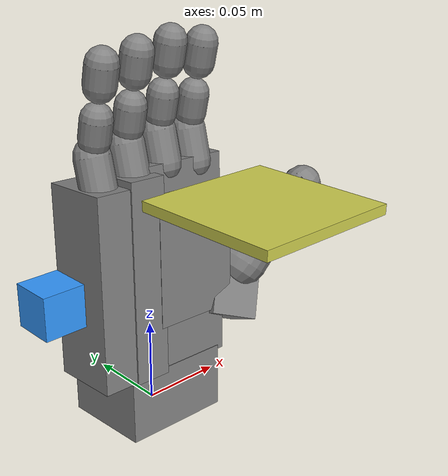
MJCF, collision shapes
<mujoco model="v2_scene_grasp_qbr">
  <size nconmax="80" />
  <include file="right_hand_v2_vertical_coacd_qbr.xml" />
  <include file="small_cube.xml" />
  <statistic center="-0.130 0 0.005" extent="0.5" meansize="0.01" />
  <visual>
    <headlight diffuse=".8 .8 .8" ambient=".2 .2 .2" specular="1 1 1" />
    <rgba force="1 0 0 1" />
    <global azimuth="120" elevation="-20" />
  </visual>
  <asset>
    <texture type="skybox" builtin="gradient" rgb1="1 1 1" rgb2="1 1 1" width="800" height="800" />
    <texture type="2d" name="groundplane" builtin="checker" mark="edge" rgb1="1 1 1" rgb2="1 1 1" markrgb="0 0 0" width="300" height="300" />
    <material name="groundplane" texture="groundplane" texuniform="true" texrepeat="5 5" reflectance="0" />
  </asset>
  <worldbody>
    <camera name="side" pos="-0.314 -0.181 0.249" xyaxes="0.5 -0.866 0 0.366 0.211 0.906" />
    <camera name="palm" pos="-0.376 0.0 0.217" xyaxes="0 -1 0 0.342 0 0.940" />
    <geom name="floor" pos="0 0 -0.25" size="0 0 0.01" type="plane" material="groundplane" contype="2" conaffinity="2" />
    <body name="cube_support" mocap="true" pos="0.025 -0.065 0.1348">
      <geom name="cube_support_geom" type="box" size="0.045 0.045 0.003" rgba="0.8 0.8 0.3 0.3" contype="4" conaffinity="0" />
    </body>
  </worldbody>
  <sensor>
    <framepos name="cube_position" objtype="body" objname="cube" />
    <framequat name="cube_orientation" objtype="body" objname="cube" />
    <framelinvel name="cube_linvel" objtype="body" objname="cube" />
    <frameangvel name="cube_angvel" objtype="body" objname="cube" />
    <framepos name="palm_position" objtype="site" objname="grasp_site" />
    <framepos name="th_tip_position" objtype="site" objname="th_tip" reftype="site" refname="grasp_site" />
    <framepos name="if_tip_position" objtype="site" objname="if_tip" reftype="site" refname="grasp_site" />
    <framepos name="mf_tip_position" objtype="site" objname="mf_tip" reftype="site" refname="grasp_site" />
    <framepos name="rf_tip_position" objtype="site" objname="rf_tip" reftype="site" refname="grasp_site" />
    <framepos name="pf_tip_position" objtype="site" objname="pf_tip" reftype="site" refname="grasp_site" />
  </sensor>
  <keyframe>
    <key name="home" qpos="0.55 0.50875 0.55 0.50875 1.3963 1.2916 1.3963 1.2916 1.38 0.22 0.33     0.025 -0.065 0.1503 1 0 0 0" ctrl="     1.38     0.33     0.55     0.55     1.4     1.4" mpos="0.025 -0.065 0.1348" mquat="1 0 0 0" />
  </keyframe>
</mujoco>

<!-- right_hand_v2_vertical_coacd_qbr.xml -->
<mujoco model="Lingxi_Hand_V2_Right_QBR">
  <compiler angle="radian" meshdir="/home/ll/SRTP/Aero-Hand/handinformation/URDF/右/qbr/meshes/" />
  <option timestep="0.01" integrator="Euler" iterations="20" ls_iterations="20">
    <flag eulerdamp="disable" />
  </option>
  <custom>
    <numeric data="80" name="max_contact_points" />
    <numeric data="50" name="max_geom_pairs" />
  </custom>
  <asset>
    <material name="black" rgba="0.2 0.2 0.2 1" />
    <material name="gray" rgba="0.5 0.5 0.5 1" />
    <material name="white" rgba="0.529 0.549 0.549 1" />
    <material name="rubber" rgba="0.3 0.3 0.3 1" />
    <mesh name="v2_palm" file="v2_base_link.STL" />
    <mesh name="v2_thumb_base" file="link1.STL" />
    <mesh name="v2_thumb_mid" file="link2.STL" />
    <mesh name="v2_thumb_tip" file="link3.STL" />
    <mesh name="v2_index_proximal" file="link4.STL" />
    <mesh name="v2_index_distal" file="link5.STL" />
    <mesh name="v2_middle_proximal" file="link6.STL" />
    <mesh name="v2_middle_distal" file="link7.STL" />
    <mesh name="v2_ring_proximal" file="link8.STL" />
    <mesh name="v2_ring_distal" file="link9.STL" />
    <mesh name="v2_pinky_proximal" file="link10.STL" />
    <mesh name="v2_pinky_distal" file="link11.STL" />
  </asset>
  <default>
    <default class="v2_hand">
      <site group="4" />
      <default class="visual">
        <geom group="2" type="mesh" contype="0" conaffinity="0" density="0" material="white" />
      </default>
      <joint damping="0.02" armature="0.001559127" frictionloss="0.02" />
      <position kp="3.0" />
      <default class="mcp">
        <joint range="0 1.3963" damping="0.1" />
        <position ctrlrange="0 1.40" />
      </default>
      <default class="pip">
        <joint range="0 1.2915" damping="0.05" />
      </default>
      <default class="thumb_cmc">
        <joint range="0 1.3788" damping="0.1" />
        <position ctrlrange="0 1.38" />
      </default>
      <!-- Current hardware-style thumb flex proxy: passive 30deg segment
           follows the actively controlled thumb MCP flexion chain. -->
      <default class="thumb_flex">
        <joint range="0 0.5236" damping="0.05" />
      </default>
      <default class="thumb_mcp">
        <joint range="0 0.7854" damping="0.05" />
        <position ctrlrange="0 0.79" />
      </default>
    </default>
  </default>
  <contact>
    <exclude body1="palm" body2="right_index_proximal" />
    <exclude body1="palm" body2="right_middle_proximal" />
    <exclude body1="palm" body2="right_ring_proximal" />
    <exclude body1="palm" body2="right_pinky_proximal" />
    <exclude body1="palm" body2="right_thumb_base" />
    <exclude body1="palm" body2="right_thumb_mid" />
    <exclude body1="palm" body2="right_ring_distal" />
    <exclude body1="palm" body2="right_pinky_distal" />
    <exclude body1="v2_mount" body2="right_index_proximal" />
    <exclude body1="v2_mount" body2="right_middle_proximal" />
    <exclude body1="v2_mount" body2="right_ring_proximal" />
    <exclude body1="v2_mount" body2="right_pinky_proximal" />
    <exclude body1="v2_mount" body2="right_thumb_base" />
    <exclude body1="right_index_proximal" body2="right_index_distal" />
    <exclude body1="right_middle_proximal" body2="right_middle_distal" />
    <exclude body1="right_ring_proximal" body2="right_ring_distal" />
    <exclude body1="right_pinky_proximal" body2="right_pinky_distal" />
    <exclude body1="right_thumb_base" body2="right_thumb_mid" />
    <exclude body1="right_thumb_mid" body2="right_thumb_tip" />
    <exclude body1="right_index_proximal" body2="right_middle_proximal" />
    <exclude body1="right_index_distal" body2="right_middle_distal" />
    <exclude body1="right_middle_proximal" body2="right_ring_proximal" />
    <exclude body1="right_middle_distal" body2="right_ring_distal" />
    <exclude body1="right_ring_proximal" body2="right_pinky_proximal" />
    <exclude body1="right_ring_distal" body2="right_pinky_distal" />
    <exclude body1="right_index_proximal" body2="right_middle_distal" />
    <exclude body1="right_middle_proximal" body2="right_ring_distal" />
    <exclude body1="right_ring_proximal" body2="right_pinky_distal" />
    <exclude body1="right_middle_proximal" body2="right_index_distal" />
    <exclude body1="right_ring_proximal" body2="right_middle_distal" />
    <exclude body1="right_pinky_proximal" body2="right_ring_distal" />
  </contact>
  <worldbody>
    <body name="v2_mount" pos="0 0 0" euler="1.5708 0 0" childclass="v2_hand">
      <body name="palm" pos="0 0 0">
        <geom type="mesh" mesh="v2_palm" class="visual" />
        <geom name="palm_capsule_000" type="box" size="0.019545 0.032818 0.027657" pos="-0.001294 0.013306 -0.002059" quat="-0.021394 -0.694705 0.718833 -0.014360" group="3" friction="1.5" solref="0.005 1.0" solimp="0.97 0.999 0.0001" />
        <geom name="palm_capsule_001" type="box" size="0.055995 0.012246 0.020313" pos="-0.037477 0.088524 0.002150" quat="-0.021394 -0.694705 0.718833 -0.014360" group="3" friction="1.5" solref="0.005 1.0" solimp="0.97 0.999 0.0001" />
        <geom name="palm_capsule_002" type="box" size="0.015020 0.023038 0.009075" pos="0.014322 0.045467 0.014280" quat="-0.021394 -0.694705 0.718833 -0.014360" group="3" friction="1.5" solref="0.005 1.0" solimp="0.97 0.999 0.0001" />
        <geom name="palm_capsule_003" type="box" size="0.058447 0.011058 0.023732" pos="-0.017454 0.089066 -0.000677" quat="-0.021394 -0.694705 0.718833 -0.014360" group="3" friction="1.5" solref="0.005 1.0" solimp="0.97 0.999 0.0001" />
        <geom name="palm_capsule_004" type="box" size="0.015590 0.024517 0.016455" pos="0.015471 0.045279 -0.007175" quat="-0.021394 -0.694705 0.718833 -0.014360" group="3" friction="1.5" solref="0.005 1.0" solimp="0.97 0.999 0.0001" />
        <geom name="palm_capsule_005" type="box" size="0.001643 0.008443 0.008259" pos="0.017799 0.006857 -0.019307" quat="-0.021394 -0.694705 0.718833 -0.014360" group="3" friction="1.5" solref="0.005 1.0" solimp="0.97 0.999 0.0001" />
        <geom name="palm_capsule_006" type="box" size="0.037733 0.026708 0.023460" pos="0.016879 0.095803 -0.000931" quat="-0.021394 -0.694705 0.718833 -0.014360" group="3" friction="1.5" solref="0.005 1.0" solimp="0.97 0.999 0.0001" />
        <geom name="palm_capsule_007" type="box" size="0.013627 0.026278 0.013850" pos="0.017772 0.136552 -0.001137" quat="-0.021394 -0.694705 0.718833 -0.014360" group="3" friction="1.5" solref="0.005 1.0" solimp="0.97 0.999 0.0001" />
        <site name="grasp_site" pos="0 0.085 -0.020" group="4" />
        <body name="right_index_proximal" pos="0.034276 0.1374 0.001">
          <inertial pos="-0.003657 0.0162 0.000274" mass="0.0686" diaginertia="7.49e-06 7.33e-06 2.82e-06" />
          <joint name="right_index_mcp" axis="1 0 0" class="mcp" />
          <geom type="mesh" mesh="v2_index_proximal" class="visual" />
          <geom name="right_index_proximal_capsule_000" type="capsule" group="3" friction="1.5" solref="0.005 1.0" solimp="0.97 0.999 0.0001" fromto="-0.003733 0.008071 0.003736 -0.003793 0.026509 -0.000839" size="0.010229" />
          <body name="right_index_distal" pos="0.00084336 0.031988 -0.0026473">
            <inertial pos="-0.00450 0.0246 0.00927" mass="0.0755" diaginertia="1.58e-05 1.57e-05 2.47e-06" />
            <joint name="right_index_pip" axis="1 0 0" class="pip" />
            <geom type="mesh" mesh="v2_index_distal" class="visual" />
            <geom name="right_index_distal_capsule_000" type="capsule" group="3" friction="1.5" solref="0.005 1.0" solimp="0.97 0.999 0.0001" fromto="-0.004533 0.003643 0.004505 -0.004547 0.015148 0.007211" size="0.008789" />
            <geom name="right_index_distal_capsule_001" type="capsule" group="3" friction="1.5" solref="0.005 1.0" solimp="0.97 0.999 0.0001" fromto="-0.004569 0.032374 0.011263 -0.004584 0.043669 0.013920" size="0.008894" />
            <site name="if_tip" pos="-0.004 0.052 0.005" group="4" />
            <site name="if_tip_t00" pos="-0.007 0.042 0.005" size="0.003" />
            <site name="if_tip_t01" pos="-0.005 0.042 0.005" size="0.003" />
            <site name="if_tip_t02" pos="-0.003 0.042 0.005" size="0.003" />
            <site name="if_tip_t03" pos="-0.001 0.042 0.005" size="0.003" />
            <site name="if_tip_t04" pos="-0.007 0.045 0.005" size="0.003" />
            <site name="if_tip_t05" pos="-0.005 0.045 0.005" size="0.003" />
            <site name="if_tip_t06" pos="-0.003 0.045 0.005" size="0.003" />
            <site name="if_tip_t07" pos="-0.001 0.045 0.005" size="0.003" />
            <site name="if_tip_t08" pos="-0.007 0.048 0.005" size="0.003" />
            <site name="if_tip_t09" pos="-0.005 0.048 0.005" size="0.003" />
            <site name="if_tip_t10" pos="-0.003 0.048 0.005" size="0.003" />
            <site name="if_tip_t11" pos="-0.001 0.048 0.005" size="0.003" />
            <site name="if_tip_t12" pos="-0.007 0.051 0.005" size="0.003" />
            <site name="if_tip_t13" pos="-0.005 0.051 0.005" size="0.003" />
            <site name="if_tip_t14" pos="-0.003 0.051 0.005" size="0.003" />
            <site name="if_tip_t15" pos="-0.001 0.051 0.005" size="0.003" />
          </body>
        </body>
        <body name="right_middle_proximal" pos="0.012276 0.14055 0.001">
          <inertial pos="-0.003657 0.0162 0.000274" mass="0.0686" diaginertia="7.49e-06 7.33e-06 2.82e-06" />
          <joint name="right_middle_mcp" axis="1 0 0" class="mcp" />
          <geom type="mesh" mesh="v2_middle_proximal" class="visual" />
          <geom name="right_middle_proximal_capsule_000" type="capsule" group="3" friction="1.5" solref="0.005 1.0" solimp="0.97 0.999 0.0001" fromto="-0.003733 0.008071 0.003736 -0.003793 0.026509 -0.000839" size="0.010229" />
          <body name="right_middle_distal" pos="0 0.02968 -0.0024563">
            <inertial pos="-0.00366 0.0269 0.00908" mass="0.0755" diaginertia="1.58e-05 1.57e-05 2.47e-06" />
            <joint name="right_middle_pip" axis="1 0 0" class="pip" />
            <geom type="mesh" mesh="v2_middle_distal" class="visual" />
            <geom name="right_middle_distal_capsule_000" type="capsule" group="3" friction="1.5" solref="0.005 1.0" solimp="0.97 0.999 0.0001" fromto="-0.003689 0.005951 0.004314 -0.003704 0.017455 0.007020" size="0.008789" />
            <geom name="right_middle_distal_capsule_001" type="capsule" group="3" friction="1.5" solref="0.005 1.0" solimp="0.97 0.999 0.0001" fromto="-0.003726 0.034682 0.011072 -0.003740 0.045977 0.013729" size="0.008894" />
            <site name="mf_tip" pos="-0.004 0.052 0.005" group="4" />
            <site name="mf_tip_t00" pos="-0.007 0.042 0.005" size="0.003" />
            <site name="mf_tip_t01" pos="-0.005 0.042 0.005" size="0.003" />
            <site name="mf_tip_t02" pos="-0.003 0.042 0.005" size="0.003" />
            <site name="mf_tip_t03" pos="-0.001 0.042 0.005" size="0.003" />
            <site name="mf_tip_t04" pos="-0.007 0.045 0.005" size="0.003" />
            <site name="mf_tip_t05" pos="-0.005 0.045 0.005" size="0.003" />
            <site name="mf_tip_t06" pos="-0.003 0.045 0.005" size="0.003" />
            <site name="mf_tip_t07" pos="-0.001 0.045 0.005" size="0.003" />
            <site name="mf_tip_t08" pos="-0.007 0.048 0.005" size="0.003" />
            <site name="mf_tip_t09" pos="-0.005 0.048 0.005" size="0.003" />
            <site name="mf_tip_t10" pos="-0.003 0.048 0.005" size="0.003" />
            <site name="mf_tip_t11" pos="-0.001 0.048 0.005" size="0.003" />
            <site name="mf_tip_t12" pos="-0.007 0.051 0.005" size="0.003" />
            <site name="mf_tip_t13" pos="-0.005 0.051 0.005" size="0.003" />
            <site name="mf_tip_t14" pos="-0.003 0.051 0.005" size="0.003" />
            <site name="mf_tip_t15" pos="-0.001 0.051 0.005" size="0.003" />
          </body>
        </body>
        <body name="right_ring_proximal" pos="-0.009724 0.1374 0.001">
          <inertial pos="-0.003657 0.0162 0.000274" mass="0.0686" diaginertia="7.49e-06 7.33e-06 2.82e-06" />
          <joint name="right_ring_mcp" axis="1 0 0" class="mcp" />
          <geom type="mesh" mesh="v2_ring_proximal" class="visual" />
          <geom name="right_ring_proximal_capsule_000" type="capsule" group="3" friction="1.5" solref="0.005 1.0" solimp="0.97 0.999 0.0001" fromto="-0.003733 0.008071 0.003736 -0.003793 0.026509 -0.000839" size="0.010229" />
          <body name="right_ring_distal" pos="0 0.02968 -0.0024563">
            <inertial pos="-0.00366 0.0269 0.00908" mass="0.0755" diaginertia="1.58e-05 1.57e-05 2.47e-06" />
            <joint name="right_ring_pip" axis="1 0 0" class="pip" />
            <geom type="mesh" mesh="v2_ring_distal" class="visual" />
            <geom name="right_ring_distal_capsule_000" type="capsule" group="3" friction="1.5" solref="0.005 1.0" solimp="0.97 0.999 0.0001" fromto="-0.003689 0.005951 0.004314 -0.003704 0.017455 0.007020" size="0.008789" />
            <geom name="right_ring_distal_capsule_001" type="capsule" group="3" friction="1.5" solref="0.005 1.0" solimp="0.97 0.999 0.0001" fromto="-0.003726 0.034682 0.011072 -0.003740 0.045977 0.013729" size="0.008894" />
            <site name="rf_tip" pos="-0.004 0.052 0.005" group="4" />
            <site name="rf_tip_t00" pos="-0.007 0.042 0.005" size="0.003" />
            <site name="rf_tip_t01" pos="-0.005 0.042 0.005" size="0.003" />
            <site name="rf_tip_t02" pos="-0.003 0.042 0.005" size="0.003" />
            <site name="rf_tip_t03" pos="-0.001 0.042 0.005" size="0.003" />
            <site name="rf_tip_t04" pos="-0.007 0.045 0.005" size="0.003" />
            <site name="rf_tip_t05" pos="-0.005 0.045 0.005" size="0.003" />
            <site name="rf_tip_t06" pos="-0.003 0.045 0.005" size="0.003" />
            <site name="rf_tip_t07" pos="-0.001 0.045 0.005" size="0.003" />
            <site name="rf_tip_t08" pos="-0.007 0.048 0.005" size="0.003" />
            <site name="rf_tip_t09" pos="-0.005 0.048 0.005" size="0.003" />
            <site name="rf_tip_t10" pos="-0.003 0.048 0.005" size="0.003" />
            <site name="rf_tip_t11" pos="-0.001 0.048 0.005" size="0.003" />
            <site name="rf_tip_t12" pos="-0.007 0.051 0.005" size="0.003" />
            <site name="rf_tip_t13" pos="-0.005 0.051 0.005" size="0.003" />
            <site name="rf_tip_t14" pos="-0.003 0.051 0.005" size="0.003" />
            <site name="rf_tip_t15" pos="-0.001 0.051 0.005" size="0.003" />
          </body>
        </body>
        <body name="right_pinky_proximal" pos="-0.031724 0.13417 0.001">
          <inertial pos="-0.003657 0.0162 0.000274" mass="0.0686" diaginertia="7.49e-06 7.33e-06 2.82e-06" />
          <joint name="right_pinky_mcp" axis="1 0 0" class="mcp" />
          <geom type="mesh" mesh="v2_pinky_proximal" class="visual" />
          <geom name="right_pinky_proximal_capsule_000" type="capsule" group="3" friction="1.5" solref="0.005 1.0" solimp="0.97 0.999 0.0001" fromto="-0.003733 0.008071 0.003736 -0.003793 0.026509 -0.000839" size="0.010229" />
          <body name="right_pinky_distal" pos="0.00084336 0.031988 -0.0026473">
            <inertial pos="-0.00450 0.0246 0.00927" mass="0.0755" diaginertia="1.58e-05 1.57e-05 2.47e-06" />
            <joint name="right_pinky_pip" axis="1 0 0" class="pip" />
            <geom type="mesh" mesh="v2_pinky_distal" class="visual" />
            <geom name="right_pinky_distal_capsule_000" type="capsule" group="3" friction="1.5" solref="0.005 1.0" solimp="0.97 0.999 0.0001" fromto="-0.004533 0.003643 0.004505 -0.004547 0.015148 0.007211" size="0.008789" />
            <geom name="right_pinky_distal_capsule_001" type="capsule" group="3" friction="1.5" solref="0.005 1.0" solimp="0.97 0.999 0.0001" fromto="-0.004569 0.032374 0.011263 -0.004584 0.043669 0.013920" size="0.008894" />
            <site name="pf_tip" pos="-0.004 0.052 0.005" group="4" />
            <site name="pf_tip_t00" pos="-0.007 0.042 0.005" size="0.003" />
            <site name="pf_tip_t01" pos="-0.005 0.042 0.005" size="0.003" />
            <site name="pf_tip_t02" pos="-0.003 0.042 0.005" size="0.003" />
            <site name="pf_tip_t03" pos="-0.001 0.042 0.005" size="0.003" />
            <site name="pf_tip_t04" pos="-0.007 0.045 0.005" size="0.003" />
            <site name="pf_tip_t05" pos="-0.005 0.045 0.005" size="0.003" />
            <site name="pf_tip_t06" pos="-0.003 0.045 0.005" size="0.003" />
            <site name="pf_tip_t07" pos="-0.001 0.045 0.005" size="0.003" />
            <site name="pf_tip_t08" pos="-0.007 0.048 0.005" size="0.003" />
            <site name="pf_tip_t09" pos="-0.005 0.048 0.005" size="0.003" />
            <site name="pf_tip_t10" pos="-0.003 0.048 0.005" size="0.003" />
            <site name="pf_tip_t11" pos="-0.001 0.048 0.005" size="0.003" />
            <site name="pf_tip_t12" pos="-0.007 0.051 0.005" size="0.003" />
            <site name="pf_tip_t13" pos="-0.005 0.051 0.005" size="0.003" />
            <site name="pf_tip_t14" pos="-0.003 0.051 0.005" size="0.003" />
            <site name="pf_tip_t15" pos="-0.001 0.051 0.005" size="0.003" />
          </body>
        </body>
        <body name="right_thumb_base" pos="0.028693 0.069894 0.010325" quat="0.999048 0 0 0.043619">
          <inertial pos="0.013775 -0.009814 0.002084" mass="0.08488" diaginertia="1.03e-05 9.49e-06 5.67e-06" />
          <joint name="right_thumb_cmc_abd" axis="0 -1 0" class="thumb_cmc" />
          <geom type="mesh" mesh="v2_thumb_base" class="visual" />
          <geom name="right_thumb_base_capsule_000" type="box" size="0.015325 0.013443 0.017225" pos="0.019292 -0.009593 0.002956" quat="0.237188 0.108156 0.803420 0.535313" group="3" friction="1.5" solref="0.005 1.0" solimp="0.97 0.999 0.0001" />
          <geom name="right_thumb_base_capsule_001" type="box" size="0.008344 0.008646 0.008403" pos="-0.002984 -0.008688 -0.002984" quat="0.237188 0.108156 0.803420 0.535313" group="3" friction="1.5" solref="0.005 1.0" solimp="0.97 0.999 0.0001" />
          <body name="right_thumb_mid" pos="0.02679 -0.0045 0.0045976" quat="0.641137 -0.027549 -0.766225 -0.032924">
            <inertial pos="0 0.01832 -0.01287" mass="0.18907" diaginertia="4.62e-05 4.25e-05 1.60e-05" />
            <joint name="right_thumb_cmc_flex" axis="1 0 0" class="thumb_flex" />
            <geom type="mesh" mesh="v2_thumb_mid" class="visual" />
            <geom name="right_thumb_mid_capsule_000" type="capsule" group="3" friction="1.5" solref="0.005 1.0" solimp="0.97 0.999 0.0001" fromto="0.000259 0.029240 -0.018406 0.000155 0.011437 -0.004140" size="0.016560" />
            <body name="right_thumb_tip" pos="0.0055478 0.0413 -0.024172">
              <inertial pos="-0.005551 0.005391 -0.014448" mass="0.07660" diaginertia="8.30e-06 8.00e-06 4.06e-06" />
              <joint name="right_thumb_mcp" axis="1 0 0" class="thumb_mcp" />
              <geom type="mesh" mesh="v2_thumb_tip" class="visual" />
              <geom name="right_thumb_tip_capsule_000" type="capsule" group="3" friction="1.5" solref="0.005 1.0" solimp="0.97 0.999 0.0001" fromto="-0.005496 0.010877 -0.025065 -0.005505 0.009894 -0.023324" size="0.011363" />
              <geom name="right_thumb_tip_capsule_001" type="capsule" group="3" friction="1.5" solref="0.005 1.0" solimp="0.97 0.999 0.0001" fromto="-0.005586 0.001141 -0.007809 -0.005595 0.000159 -0.006067" size="0.010936" />
              <site name="th_tip" pos="-0.006 0.021 -0.020" group="4" />
              <site name="th_tip_t00" pos="-0.010 0.008 -0.020" size="0.003" />
              <site name="th_tip_t01" pos="-0.007 0.008 -0.020" size="0.003" />
              <site name="th_tip_t02" pos="-0.004 0.008 -0.020" size="0.003" />
              <site name="th_tip_t03" pos="-0.001 0.008 -0.020" size="0.003" />
              <site name="th_tip_t04" pos="-0.010 0.012 -0.020" size="0.003" />
              <site name="th_tip_t05" pos="-0.007 0.012 -0.020" size="0.003" />
              <site name="th_tip_t06" pos="-0.004 0.012 -0.020" size="0.003" />
              <site name="th_tip_t07" pos="-0.001 0.012 -0.020" size="0.003" />
              <site name="th_tip_t08" pos="-0.010 0.016 -0.020" size="0.003" />
              <site name="th_tip_t09" pos="-0.007 0.016 -0.020" size="0.003" />
              <site name="th_tip_t10" pos="-0.004 0.016 -0.020" size="0.003" />
              <site name="th_tip_t11" pos="-0.001 0.016 -0.020" size="0.003" />
              <site name="th_tip_t12" pos="-0.010 0.020 -0.020" size="0.003" />
              <site name="th_tip_t13" pos="-0.007 0.020 -0.020" size="0.003" />
              <site name="th_tip_t14" pos="-0.004 0.020 -0.020" size="0.003" />
              <site name="th_tip_t15" pos="-0.001 0.020 -0.020" size="0.003" />
            </body>
          </body>
        </body>
      </body>
    </body>
  </worldbody>
  <actuator>
    <position name="hw_thumb_rot" joint="right_thumb_cmc_abd" class="thumb_cmc" kp="5" />
    <position name="hw_thumb_flex" joint="right_thumb_mcp" class="thumb_mcp" kp="3" />
    <position name="hw_index" joint="right_index_mcp" class="mcp" kp="3" />
    <position name="hw_middle" joint="right_middle_mcp" class="mcp" kp="3" />
    <position name="hw_ring" joint="right_ring_mcp" class="mcp" kp="3" />
    <position name="hw_pinky" joint="right_pinky_mcp" class="mcp" kp="3" />
  </actuator>
  <sensor>
    <jointpos name="hw_pos_thumb_rot" joint="right_thumb_cmc_abd" />
    <jointpos name="hw_pos_thumb_flex" joint="right_thumb_mcp" />
    <jointpos name="hw_pos_index" joint="right_index_mcp" />
    <jointpos name="hw_pos_middle" joint="right_middle_mcp" />
    <jointpos name="hw_pos_ring" joint="right_ring_mcp" />
    <jointpos name="hw_pos_pinky" joint="right_pinky_mcp" />
    <touch name="hw_tip_frc_thumb_00" site="th_tip_t00" />
    <touch name="hw_tip_frc_thumb_01" site="th_tip_t01" />
    <touch name="hw_tip_frc_thumb_02" site="th_tip_t02" />
    <touch name="hw_tip_frc_thumb_03" site="th_tip_t03" />
    <touch name="hw_tip_frc_thumb_04" site="th_tip_t04" />
    <touch name="hw_tip_frc_thumb_05" site="th_tip_t05" />
    <touch name="hw_tip_frc_thumb_06" site="th_tip_t06" />
    <touch name="hw_tip_frc_thumb_07" site="th_tip_t07" />
    <touch name="hw_tip_frc_thumb_08" site="th_tip_t08" />
    <touch name="hw_tip_frc_thumb_09" site="th_tip_t09" />
    <touch name="hw_tip_frc_thumb_10" site="th_tip_t10" />
    <touch name="hw_tip_frc_thumb_11" site="th_tip_t11" />
    <touch name="hw_tip_frc_thumb_12" site="th_tip_t12" />
    <touch name="hw_tip_frc_thumb_13" site="th_tip_t13" />
    <touch name="hw_tip_frc_thumb_14" site="th_tip_t14" />
    <touch name="hw_tip_frc_thumb_15" site="th_tip_t15" />
    <touch name="hw_tip_frc_index_00" site="if_tip_t00" />
    <touch name="hw_tip_frc_index_01" site="if_tip_t01" />
    <touch name="hw_tip_frc_index_02" site="if_tip_t02" />
    <touch name="hw_tip_frc_index_03" site="if_tip_t03" />
    <touch name="hw_tip_frc_index_04" site="if_tip_t04" />
    <touch name="hw_tip_frc_index_05" site="if_tip_t05" />
    <touch name="hw_tip_frc_index_06" site="if_tip_t06" />
    <touch name="hw_tip_frc_index_07" site="if_tip_t07" />
    <touch name="hw_tip_frc_index_08" site="if_tip_t08" />
    <touch name="hw_tip_frc_index_09" site="if_tip_t09" />
    <touch name="hw_tip_frc_index_10" site="if_tip_t10" />
    <touch name="hw_tip_frc_index_11" site="if_tip_t11" />
    <touch name="hw_tip_frc_index_12" site="if_tip_t12" />
    <touch name="hw_tip_frc_index_13" site="if_tip_t13" />
    <touch name="hw_tip_frc_index_14" site="if_tip_t14" />
    <touch name="hw_tip_frc_index_15" site="if_tip_t15" />
    <touch name="hw_tip_frc_middle_00" site="mf_tip_t00" />
    <touch name="hw_tip_frc_middle_01" site="mf_tip_t01" />
    <touch name="hw_tip_frc_middle_02" site="mf_tip_t02" />
    <touch name="hw_tip_frc_middle_03" site="mf_tip_t03" />
    <touch name="hw_tip_frc_middle_04" site="mf_tip_t04" />
    <touch name="hw_tip_frc_middle_05" site="mf_tip_t05" />
    <touch name="hw_tip_frc_middle_06" site="mf_tip_t06" />
    <touch name="hw_tip_frc_middle_07" site="mf_tip_t07" />
    <touch name="hw_tip_frc_middle_08" site="mf_tip_t08" />
    <touch name="hw_tip_frc_middle_09" site="mf_tip_t09" />
    <touch name="hw_tip_frc_middle_10" site="mf_tip_t10" />
    <touch name="hw_tip_frc_middle_11" site="mf_tip_t11" />
    <touch name="hw_tip_frc_middle_12" site="mf_tip_t12" />
    <touch name="hw_tip_frc_middle_13" site="mf_tip_t13" />
    <touch name="hw_tip_frc_middle_14" site="mf_tip_t14" />
    <touch name="hw_tip_frc_middle_15" site="mf_tip_t15" />
    <touch name="hw_tip_frc_ring_00" site="rf_tip_t00" />
    <touch name="hw_tip_frc_ring_01" site="rf_tip_t01" />
    <touch name="hw_tip_frc_ring_02" site="rf_tip_t02" />
    <touch name="hw_tip_frc_ring_03" site="rf_tip_t03" />
    <touch name="hw_tip_frc_ring_04" site="rf_tip_t04" />
    <touch name="hw_tip_frc_ring_05" site="rf_tip_t05" />
    <touch name="hw_tip_frc_ring_06" site="rf_tip_t06" />
    <touch name="hw_tip_frc_ring_07" site="rf_tip_t07" />
    <touch name="hw_tip_frc_ring_08" site="rf_tip_t08" />
    <touch name="hw_tip_frc_ring_09" site="rf_tip_t09" />
    <touch name="hw_tip_frc_ring_10" site="rf_tip_t10" />
    <touch name="hw_tip_frc_ring_11" site="rf_tip_t11" />
    <touch name="hw_tip_frc_ring_12" site="rf_tip_t12" />
    <touch name="hw_tip_frc_ring_13" site="rf_tip_t13" />
    <touch name="hw_tip_frc_ring_14" site="rf_tip_t14" />
    <touch name="hw_tip_frc_ring_15" site="rf_tip_t15" />
    <touch name="hw_tip_frc_pinky_00" site="pf_tip_t00" />
    <touch name="hw_tip_frc_pinky_01" site="pf_tip_t01" />
    <touch name="hw_tip_frc_pinky_02" site="pf_tip_t02" />
    <touch name="hw_tip_frc_pinky_03" site="pf_tip_t03" />
    <touch name="hw_tip_frc_pinky_04" site="pf_tip_t04" />
    <touch name="hw_tip_frc_pinky_05" site="pf_tip_t05" />
    <touch name="hw_tip_frc_pinky_06" site="pf_tip_t06" />
    <touch name="hw_tip_frc_pinky_07" site="pf_tip_t07" />
    <touch name="hw_tip_frc_pinky_08" site="pf_tip_t08" />
    <touch name="hw_tip_frc_pinky_09" site="pf_tip_t09" />
    <touch name="hw_tip_frc_pinky_10" site="pf_tip_t10" />
    <touch name="hw_tip_frc_pinky_11" site="pf_tip_t11" />
    <touch name="hw_tip_frc_pinky_12" site="pf_tip_t12" />
    <touch name="hw_tip_frc_pinky_13" site="pf_tip_t13" />
    <touch name="hw_tip_frc_pinky_14" site="pf_tip_t14" />
    <touch name="hw_tip_frc_pinky_15" site="pf_tip_t15" />
  </sensor>
  <equality>
    <joint joint1="right_index_pip" joint2="right_index_mcp" polycoef="0 0.925 0 0 0" solref="0.005 1" solimp="0.95 0.99 0.001" />
    <joint joint1="right_middle_pip" joint2="right_middle_mcp" polycoef="0 0.925 0 0 0" solref="0.005 1" solimp="0.95 0.99 0.001" />
    <joint joint1="right_ring_pip" joint2="right_ring_mcp" polycoef="0 0.925 0 0 0" solref="0.005 1" solimp="0.95 0.99 0.001" />
    <joint joint1="right_pinky_pip" joint2="right_pinky_mcp" polycoef="0 0.925 0 0 0" solref="0.005 1" solimp="0.95 0.99 0.001" />
    <joint joint1="right_thumb_cmc_flex" joint2="right_thumb_mcp" polycoef="0 0.6666667 0 0 0" solref="0.005 1" solimp="0.95 0.99 0.001" />
  </equality>
</mujoco>

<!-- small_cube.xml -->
<mujoco>
  <!-- ================================================================
       物块参数文件（P-stage 和 V-stage 共用）
       ================================================================ -->
  <default>
    <default class="cube">
      <!-- C14: friction 2.0→1.5 (moderate), mass 20g→10g (easier hold) -->
      <!-- C20穿模修复: 添加solref/solimp使方块接触更硬 -->
      <geom friction="1.5 0.05" conaffinity="7" condim="3" solref="0.005 1.0" solimp="0.97 0.999 0.0001"/>
    </default>
  </default>

  <worldbody>
    <!-- 【物块 body】
         pos：默认初始位置（被 keyframe 或 Python config 中 cube_pos 覆盖，此值不生效）
         quat：初始姿态，1 0 0 0 = 无旋转 -->
    <body name="cube" pos="-0.066 0.0 0.085" quat="1 0 0 0" childclass="cube">
      <!-- freejoint：使物块有 6-DOF 自由运动（位置+姿态，共 7 qpos）-->
      <freejoint name="cube_freejoint"/>
      <geom name="cube" type="box" size=".0125 .0125 .0125" mass=".020" group="1" rgba="0.2 0.6 1.0 1"/>
      <site name="cube_center" pos="0 0 0" group="4"/>
    </body>
  </worldbody>
</mujoco>
